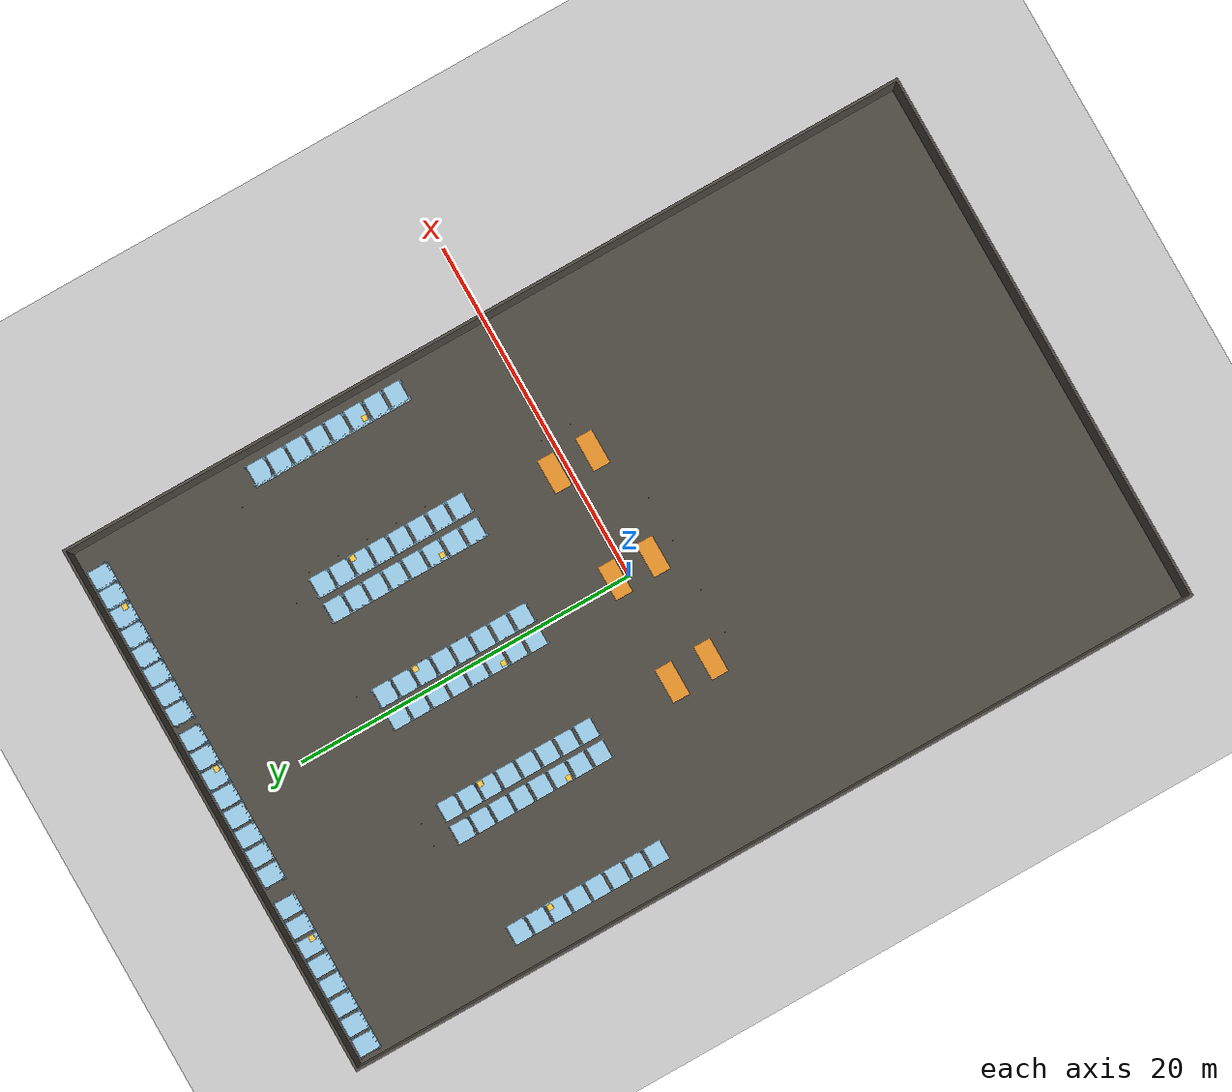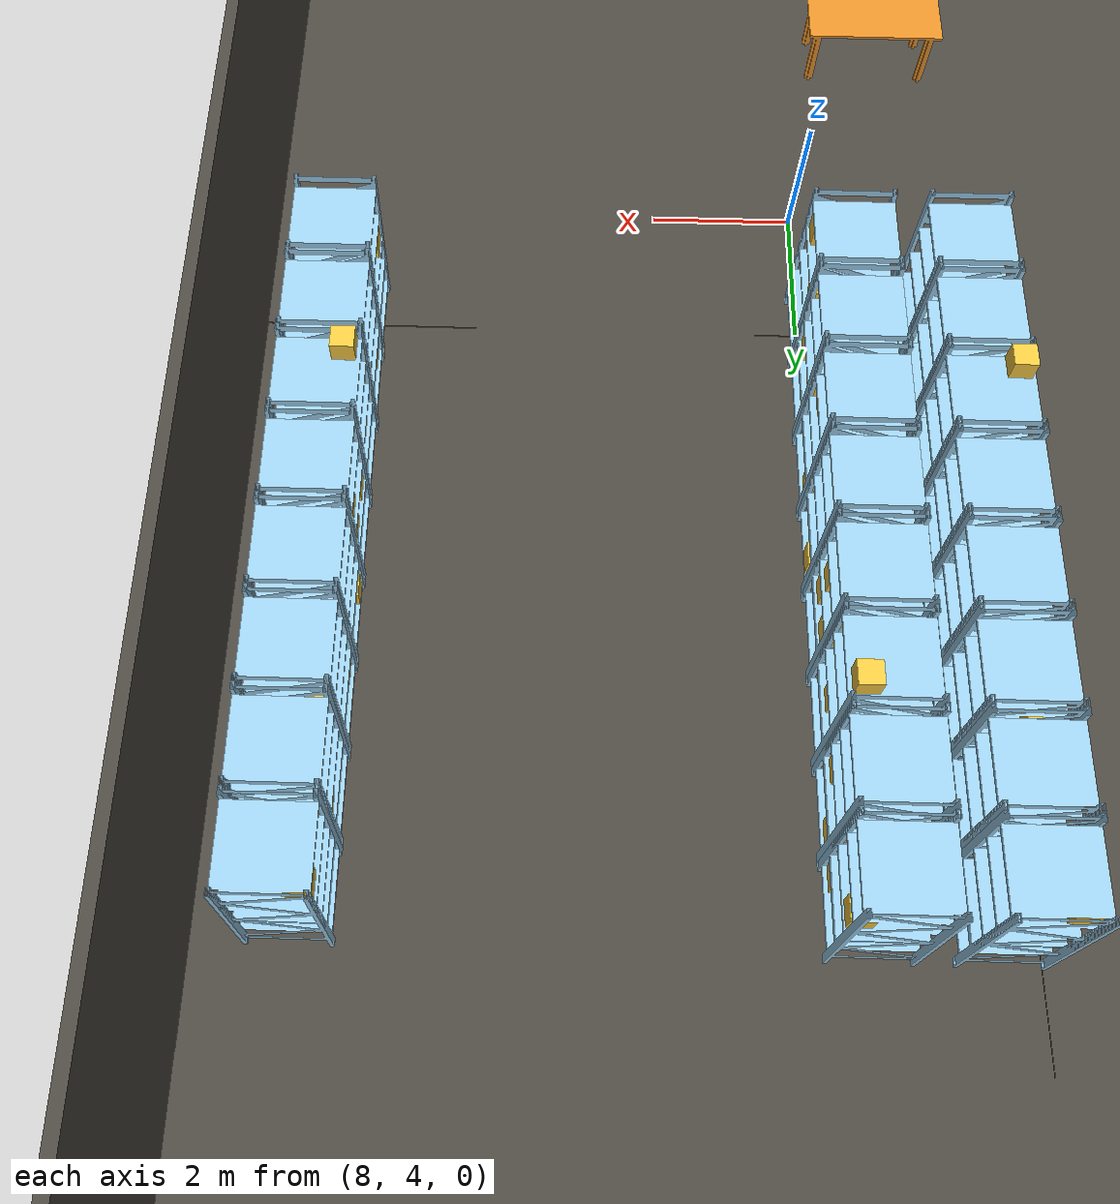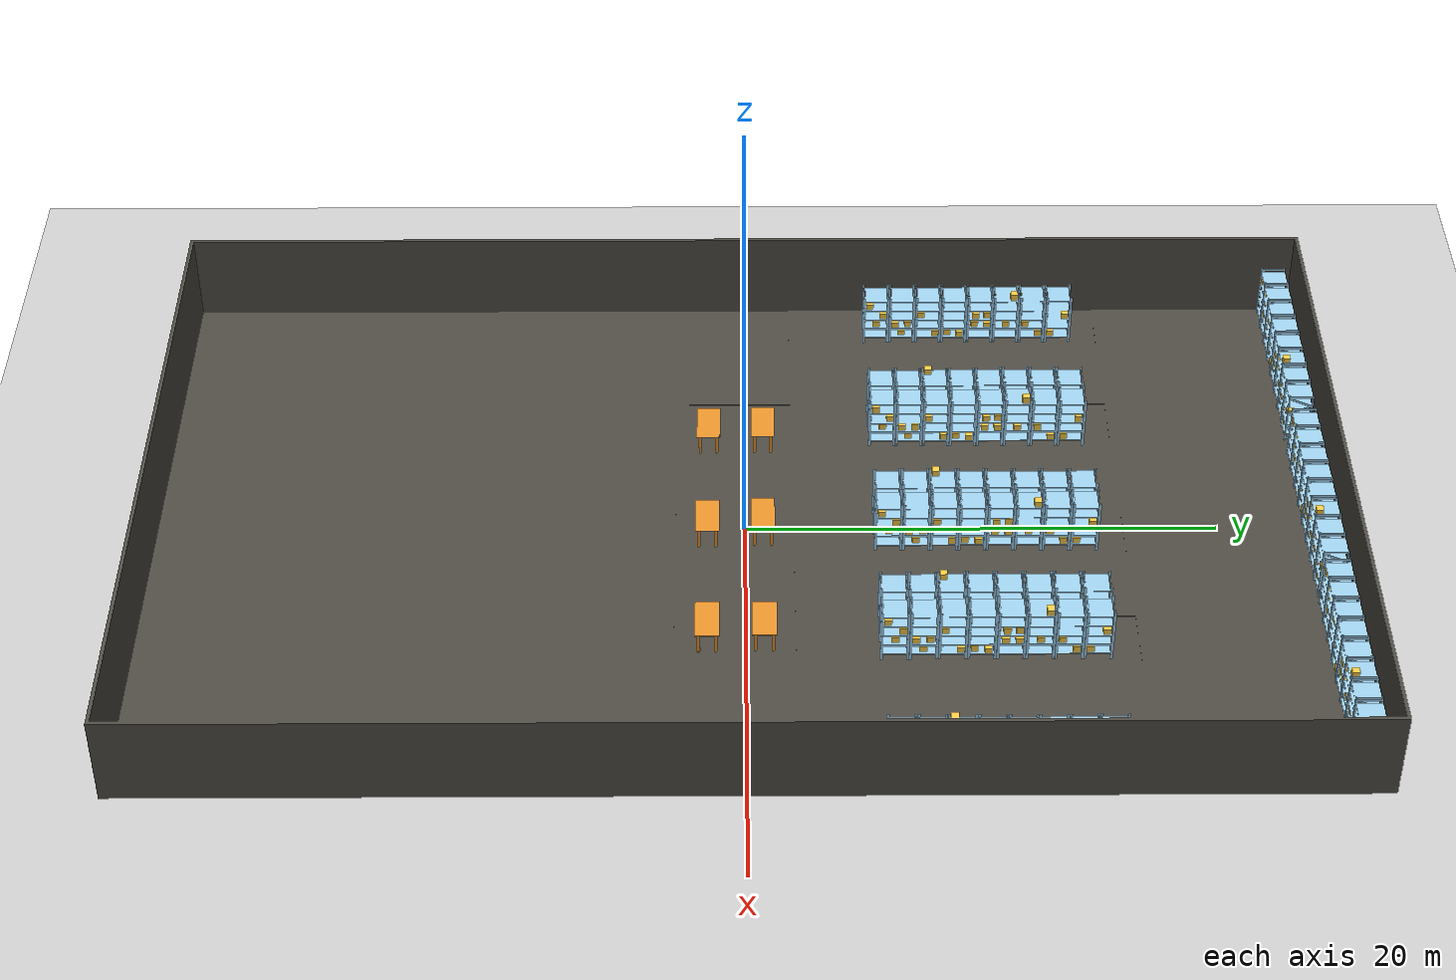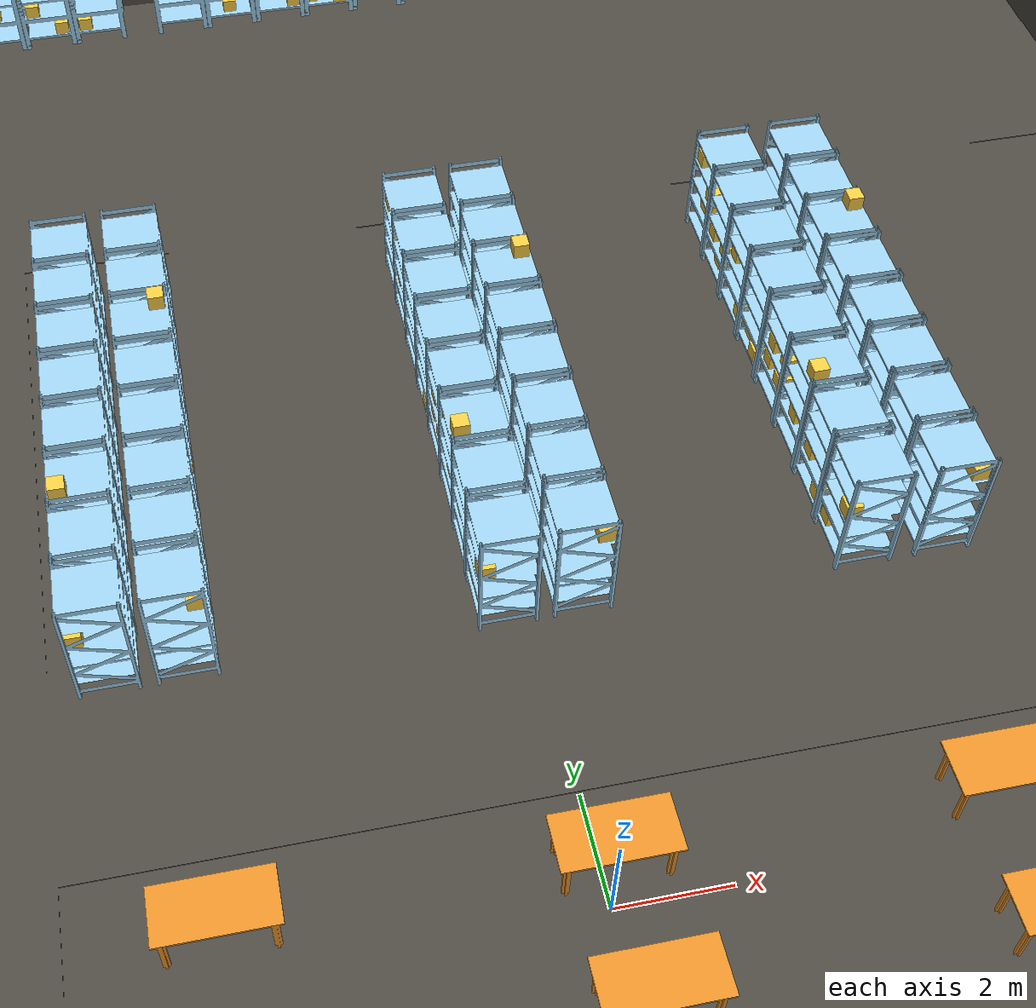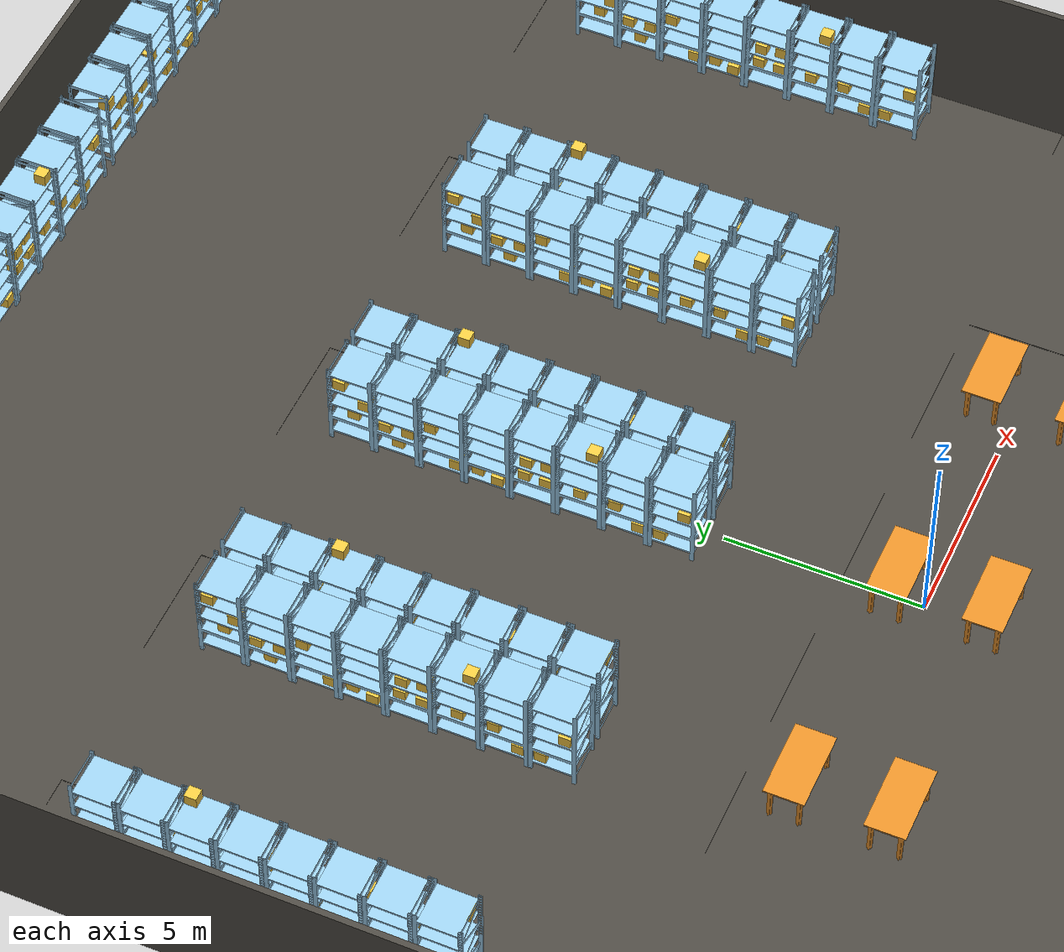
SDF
<sdf version="1.9">
 <world name="industrial_zone">
  <plugin filename="libgz-sim-physics-system.so" name="gz::sim::systems::Physics"/>
  <plugin filename="libgz-sim-user-commands-system.so" name="gz::sim::systems::UserCommands"/>
  <plugin filename="libgz-sim-scene-broadcaster-system.so" name="gz::sim::systems::SceneBroadcaster"/>
  <plugin filename="libgz-sim-sensors-system.so" name="gz::sim::systems::Sensors">
   <render_engine>ogre2</render_engine>
  </plugin>
  <plugin filename="libgz-sim-imu-system.so" name="gz::sim::systems::Imu"/>
  <plugin filename="libgz-sim-navsat-system.so" name="gz::sim::systems::NavSat"/>
  <physics name="default_physics" type="ode">
   <max_step_size>0.02</max_step_size>
   <real_time_factor>1.0</real_time_factor>
   <real_time_update_rate>50</real_time_update_rate>
  </physics>
  <gravity>0 0 -9.8</gravity>
  <magnetic_field>6e-06 2.3e-05 -4.2e-05</magnetic_field>
  <atmosphere type="adiabatic"/>
  <light type="directional" name="sun">
   <pose>0 0 20 -1.3 0 0.5</pose>
   <diffuse>0.8 0.8 0.8 1</diffuse>
   <specular>0.01 0.01 0.01 1</specular>
   <intensity>2</intensity>
   <visualize>false</visualize>
  </light>
  <scene><ambient>1 1 1</ambient><grid>false</grid></scene>
  <model name="ground_plane">
   <static>true</static>
   <link name="link">
    <collision name="collision"><geometry><plane><normal>0 0 1</normal></plane></geometry></collision>
    <visual name="visual">
     <geometry><plane><normal>0 0 1</normal><size>100 100</size></plane></geometry>
     <material>
      <ambient>0.8 0.8 0.8 1</ambient>
      <diffuse>0.8 0.8 0.8 1</diffuse>
      <specular>0.8 0.8 0.8 1</specular>
     </material>
    </visual>
   </link>
  </model>
  <include><uri>model://floor</uri><name>floor</name></include>
  <include><uri>model://shelves</uri><name>shelves_01</name><pose>-5.58 24.5 0 0 0 0</pose></include>
  <include><uri>model://shelves</uri><name>shelves_02</name><pose>4.62 24.50 0 0 0 0</pose></include>
  <include><uri>model://shelves</uri><name>shelves_03</name><pose>14.40 24.50 0 0 0 0</pose></include>
  <include><uri>model://shelves</uri><name>shelves_04</name><pose>-13.73 15.0 0 0 0 1.57</pose></include>
  <include><uri>model://shelves</uri><name>shelves_05</name><pose>-7.08 5.26 0 0 0 -1.57</pose></include>
  <include><uri>model://shelves</uri><name>shelves_06</name><pose>-6.3 15.0 0 0 0 1.57</pose></include>
  <include><uri>model://shelves</uri><name>shelves_07</name><pose>-0.15 5.26 0 0 0 -1.57</pose></include>
  <include><uri>model://shelves</uri><name>shelves_08</name><pose>0.63 15.0 0 0 0 1.57</pose></include>
  <include><uri>model://shelves</uri><name>shelves_09</name><pose>6.38 5.26 0 0 0 -1.57</pose></include>
  <include><uri>model://shelves</uri><name>shelves_10</name><pose>7.32 15.0 0 0 0 1.57</pose></include>
  <include><uri>model://shelves</uri><name>shelves_11</name><pose>14.68 5.26 0 0 0 -1.57</pose></include>
 </world>
</sdf>

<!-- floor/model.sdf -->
<!-- Floor model: ground surface + work tables -->
<!-- Onshape document_id: 413e77afccf5d41747a34ccc / workspace_id: b5425021473a3ff7e609cc44 -->
<sdf version="1.9">
  <model name="floor">
    <static>true</static>
    <link name="floor">
      <!-- Part table -->
      <visual name="table">
        <pose>6.69 0.76 1.0 0 0 0</pose>
        <geometry>
          <mesh><uri>meshes/mesa.stl</uri></mesh>
        </geometry>
        <material>
          <ambient>0.909804 0.572549 0.164706 1</ambient>
          <diffuse>0.909804 0.572549 0.164706 1</diffuse>
        </material>
      </visual>
      <collision name="table_collision">
        <pose>6.69 0.76 1.0 0 0 0</pose>
        <geometry>
          <mesh><uri>meshes/mesa.stl</uri></mesh>
        </geometry>
      </collision>
      <!-- Part floor_surface -->
      <visual name="floor_visual">
        <pose>-15.3716 -24.9021 0 0 0 0</pose>
        <geometry>
          <mesh><uri>meshes/suelo.stl</uri></mesh>
        </geometry>
        <material>
          <ambient>0.301961 0.290196 0.262745 1</ambient>
          <diffuse>0.301961 0.290196 0.262745 1</diffuse>
        </material>
      </visual>
      <collision name="floor_collision">
        <pose>-15.3716 -24.9021 0 0 0 0</pose>
        <geometry>
          <mesh><uri>meshes/suelo.stl</uri></mesh>
        </geometry>
      </collision>
      <!-- Part table_2 -->
      <visual name="table_2">
        <pose>-6 0.8 1.0 0 0 0</pose>
        <geometry>
          <mesh><uri>meshes/mesa.stl</uri></mesh>
        </geometry>
        <material>
          <ambient>0.909804 0.572549 0.164706 1</ambient>
          <diffuse>0.909804 0.572549 0.164706 1</diffuse>
        </material>
      </visual>
      <collision name="table_2_collision">
        <pose>-6 0.8 1.0 0 0 0</pose>
        <geometry>
          <mesh><uri>meshes/mesa.stl</uri></mesh>
        </geometry>
      </collision>
      <!-- Part table_3 -->
      <visual name="table_3">
        <pose>-5.95 -1.575 1.0 0 0 0</pose>
        <geometry>
          <mesh><uri>meshes/mesa.stl</uri></mesh>
        </geometry>
        <material>
          <ambient>0.909804 0.572549 0.164706 1</ambient>
          <diffuse>0.909804 0.572549 0.164706 1</diffuse>
        </material>
      </visual>
      <collision name="table_3_collision">
        <pose>-5.95 -1.575 1.0 0 0 0</pose>
        <geometry>
          <mesh><uri>meshes/mesa.stl</uri></mesh>
        </geometry>
      </collision>
      <!-- Part table_4 -->
      <visual name="table_4">
        <pose>0.2 0.75 1.0 0 0 0</pose>
        <geometry>
          <mesh><uri>meshes/mesa.stl</uri></mesh>
        </geometry>
        <material>
          <ambient>0.909804 0.572549 0.164706 1</ambient>
          <diffuse>0.909804 0.572549 0.164706 1</diffuse>
        </material>
      </visual>
      <collision name="table_4_collision">
        <pose>0.2 0.75 1.0 0 0 0</pose>
        <geometry>
          <mesh><uri>meshes/mesa.stl</uri></mesh>
        </geometry>
      </collision>
      <!-- Part table_5 -->
      <visual name="table_5">
        <pose>0.27 -1.595 1.0 0 0 0</pose>
        <geometry>
          <mesh><uri>meshes/mesa.stl</uri></mesh>
        </geometry>
        <material>
          <ambient>0.909804 0.572549 0.164706 1</ambient>
          <diffuse>0.909804 0.572549 0.164706 1</diffuse>
        </material>
      </visual>
      <collision name="table_5_collision">
        <pose>0.27 -1.595 1.0 0 0 0</pose>
        <geometry>
          <mesh><uri>meshes/mesa.stl</uri></mesh>
        </geometry>
      </collision>
      <!-- Part table_6 -->
      <visual name="table_6">
        <pose>6.73 -1.585 1.0 0 0 0</pose>
        <geometry>
          <mesh><uri>meshes/mesa.stl</uri></mesh>
        </geometry>
        <material>
          <ambient>0.909804 0.572549 0.164706 1</ambient>
          <diffuse>0.909804 0.572549 0.164706 1</diffuse>
        </material>
      </visual>
      <collision name="table_6_collision">
        <pose>6.73 -1.585 1.0 0 0 0</pose>
        <geometry>
          <mesh><uri>meshes/mesa.stl</uri></mesh>
        </geometry>
      </collision>
    </link>
  </model>
</sdf>

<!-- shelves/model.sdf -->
<!-- Shelving unit with boxes -->
<!-- Onshape document_id: 413e77afccf5d41747a34ccc / workspace_id: b5425021473a3ff7e609cc44 -->
<sdf version="1.9">
  <model name="shelves">
    <static>true</static>
    <link name="shelf">
      <!-- Part box -->
      <visual name="box">
        <pose>-2.78049 -0.62 2.38786 0 0 0</pose>
        <geometry><mesh><uri>meshes/caja.stl</uri></mesh></geometry>
        <material>
          <ambient>0.980392 0.796078 0.262745 1</ambient>
          <diffuse>0.980392 0.796078 0.262745 1</diffuse>
        </material>
      </visual>
      <collision name="box_collision">
        <pose>-2.78049 -0.62 2.38786 0 0 0</pose>
        <geometry><mesh><uri>meshes/caja.stl</uri></mesh></geometry>
      </collision>
      <!-- Part shelf_rack -->
      <visual name="shelf_rack_visual">
        <pose>-8.39331 -0.8125 0.0930265 0 0 0</pose>
        <geometry><mesh><uri>meshes/estanteria.stl</uri></mesh></geometry>
        <material>
          <ambient>0.615686 0.811765 0.92549 1</ambient>
          <diffuse>0.615686 0.811765 0.92549 1</diffuse>
        </material>
      </visual>
      <collision name="shelf_rack_collision">
        <pose>-8.39331 -0.8125 0.0930265 0 0 0</pose>
        <geometry><mesh><uri>meshes/estanteria.stl</uri></mesh></geometry>
      </collision>
      <!-- Part shelf_rack_2 -->
      <visual name="shelf_rack_2">
        <pose>-3.67331 -0.8125 0.0930265 0 0 0</pose>
        <geometry><mesh><uri>meshes/estanteria.stl</uri></mesh></geometry>
        <material>
          <ambient>0.615686 0.811765 0.92549 1</ambient>
          <diffuse>0.615686 0.811765 0.92549 1</diffuse>
        </material>
      </visual>
      <collision name="shelf_rack_2_collision">
        <pose>-3.67331 -0.8125 0.0930265 0 0 0</pose>
        <geometry><mesh><uri>meshes/estanteria.stl</uri></mesh></geometry>
      </collision>
      <!-- Part box_2 -->
      <visual name="box_2">
        <pose>-1.6072 -0.6325 0.382277 0 0 0</pose>
        <geometry><mesh><uri>meshes/caja.stl</uri></mesh></geometry>
        <material>
          <ambient>0.980392 0.796078 0.262745 1</ambient>
          <diffuse>0.980392 0.796078 0.262745 1</diffuse>
        </material>
      </visual>
      <collision name="box_2_collision">
        <pose>-1.6072 -0.6325 0.382277 0 0 0</pose>
        <geometry><mesh><uri>meshes/caja.stl</uri></mesh></geometry>
      </collision>
      <!-- Part box_3 -->
      <visual name="box_3">
        <pose>-3.09159 -0.621707 0.880993 0 0 0</pose>
        <geometry><mesh><uri>meshes/caja.stl</uri></mesh></geometry>
        <material>
          <ambient>0.980392 0.796078 0.262745 1</ambient>
          <diffuse>0.980392 0.796078 0.262745 1</diffuse>
        </material>
      </visual>
      <collision name="box_3_collision">
        <pose>-3.09159 -0.621707 0.880993 0 0 0</pose>
        <geometry><mesh><uri>meshes/caja.stl</uri></mesh></geometry>
      </collision>
      <!-- Part box_4 -->
      <visual name="box_4">
        <pose>-5.18688 -0.6725 0.377986 0 0 0</pose>
        <geometry><mesh><uri>meshes/caja.stl</uri></mesh></geometry>
        <material>
          <ambient>0.980392 0.796078 0.262745 1</ambient>
          <diffuse>0.980392 0.796078 0.262745 1</diffuse>
        </material>
      </visual>
      <collision name="box_4_collision">
        <pose>-5.18688 -0.6725 0.377986 0 0 0</pose>
        <geometry><mesh><uri>meshes/caja.stl</uri></mesh></geometry>
      </collision>
      <!-- Part box_5 -->
      <visual name="box_5">
        <pose>-2.20641 -0.6175 0.885253 0 0 0</pose>
        <geometry><mesh><uri>meshes/caja.stl</uri></mesh></geometry>
        <material>
          <ambient>0.980392 0.796078 0.262745 1</ambient>
          <diffuse>0.980392 0.796078 0.262745 1</diffuse>
        </material>
      </visual>
      <collision name="box_5_collision">
        <pose>-2.20641 -0.6175 0.885253 0 0 0</pose>
        <geometry><mesh><uri>meshes/caja.stl</uri></mesh></geometry>
      </collision>
      <!-- Part shelf_rack_3 -->
      <visual name="shelf_rack_3">
        <pose>-2.49331 -0.8125 0.0930265 0 0 0</pose>
        <geometry><mesh><uri>meshes/estanteria.stl</uri></mesh></geometry>
        <material>
          <ambient>0.615686 0.811765 0.92549 1</ambient>
          <diffuse>0.615686 0.811765 0.92549 1</diffuse>
        </material>
      </visual>
      <collision name="shelf_rack_3_collision">
        <pose>-2.49331 -0.8125 0.0930265 0 0 0</pose>
        <geometry><mesh><uri>meshes/estanteria.stl</uri></mesh></geometry>
      </collision>
      <!-- Part shelf_rack_4 -->
      <visual name="shelf_rack_4">
        <pose>-4.85331 -0.8125 0.0930265 0 0 0</pose>
        <geometry><mesh><uri>meshes/estanteria.stl</uri></mesh></geometry>
        <material>
          <ambient>0.615686 0.811765 0.92549 1</ambient>
          <diffuse>0.615686 0.811765 0.92549 1</diffuse>
        </material>
      </visual>
      <collision name="shelf_rack_4_collision">
        <pose>-4.85331 -0.8125 0.0930265 0 0 0</pose>
        <geometry><mesh><uri>meshes/estanteria.stl</uri></mesh></geometry>
      </collision>
      <!-- Part shelf_rack_5 -->
      <visual name="shelf_rack_5">
        <pose>-6.03331 -0.8125 0.0930265 0 0 0</pose>
        <geometry><mesh><uri>meshes/estanteria.stl</uri></mesh></geometry>
        <material>
          <ambient>0.615686 0.811765 0.92549 1</ambient>
          <diffuse>0.615686 0.811765 0.92549 1</diffuse>
        </material>
      </visual>
      <collision name="shelf_rack_5_collision">
        <pose>-6.03331 -0.8125 0.0930265 0 0 0</pose>
        <geometry><mesh><uri>meshes/estanteria.stl</uri></mesh></geometry>
      </collision>
      <!-- Part shelf_rack_6 -->
      <visual name="shelf_rack_6">
        <pose>-7.21331 -0.8125 0.0930265 0 0 0</pose>
        <geometry><mesh><uri>meshes/estanteria.stl</uri></mesh></geometry>
        <material>
          <ambient>0.615686 0.811765 0.92549 1</ambient>
          <diffuse>0.615686 0.811765 0.92549 1</diffuse>
        </material>
      </visual>
      <collision name="shelf_rack_6_collision">
        <pose>-7.21331 -0.8125 0.0930265 0 0 0</pose>
        <geometry><mesh><uri>meshes/estanteria.stl</uri></mesh></geometry>
      </collision>
      <!-- Part box_6 -->
      <visual name="box_6">
        <pose>-1.05503 -0.6175 0.38335 0 0 0</pose>
        <geometry><mesh><uri>meshes/caja.stl</uri></mesh></geometry>
        <material>
          <ambient>0.980392 0.796078 0.262745 1</ambient>
          <diffuse>0.980392 0.796078 0.262745 1</diffuse>
        </material>
      </visual>
      <collision name="box_6_collision">
        <pose>-1.05503 -0.6175 0.38335 0 0 0</pose>
        <geometry><mesh><uri>meshes/caja.stl</uri></mesh></geometry>
      </collision>
      <!-- Part box_7 -->
      <visual name="box_7">
        <pose>-7.82352 -0.5525 0.368958 0 0 0</pose>
        <geometry><mesh><uri>meshes/caja.stl</uri></mesh></geometry>
        <material>
          <ambient>0.980392 0.796078 0.262745 1</ambient>
          <diffuse>0.980392 0.796078 0.262745 1</diffuse>
        </material>
      </visual>
      <collision name="box_7_collision">
        <pose>-7.82352 -0.5525 0.368958 0 0 0</pose>
        <geometry><mesh><uri>meshes/caja.stl</uri></mesh></geometry>
      </collision>
      <!-- Part box_8 -->
      <visual name="box_8">
        <pose>-3.95203 -0.57 1.38433 0 0 0</pose>
        <geometry><mesh><uri>meshes/caja.stl</uri></mesh></geometry>
        <material>
          <ambient>0.980392 0.796078 0.262745 1</ambient>
          <diffuse>0.980392 0.796078 0.262745 1</diffuse>
        </material>
      </visual>
      <collision name="box_8_collision">
        <pose>-3.95203 -0.57 1.38433 0 0 0</pose>
        <geometry><mesh><uri>meshes/caja.stl</uri></mesh></geometry>
      </collision>
      <!-- Part box_9 -->
      <visual name="box_9">
        <pose>-0.447349 -0.655 1.37427 0 0 0</pose>
        <geometry><mesh><uri>meshes/caja.stl</uri></mesh></geometry>
        <material>
          <ambient>0.980392 0.796078 0.262745 1</ambient>
          <diffuse>0.980392 0.796078 0.262745 1</diffuse>
        </material>
      </visual>
      <collision name="box_9_collision">
        <pose>-0.447349 -0.655 1.37427 0 0 0</pose>
        <geometry><mesh><uri>meshes/caja.stl</uri></mesh></geometry>
      </collision>
      <!-- Part shelf_rack_7 -->
      <visual name="shelf_rack_7">
        <pose>-9.57331 -0.8125 0.0930265 0 0 0</pose>
        <geometry><mesh><uri>meshes/estanteria.stl</uri></mesh></geometry>
        <material>
          <ambient>0.615686 0.811765 0.92549 1</ambient>
          <diffuse>0.615686 0.811765 0.92549 1</diffuse>
        </material>
      </visual>
      <collision name="shelf_rack_7_collision">
        <pose>-9.57331 -0.8125 0.0930265 0 0 0</pose>
        <geometry><mesh><uri>meshes/estanteria.stl</uri></mesh></geometry>
      </collision>
      <!-- Part box_10 -->
      <visual name="box_10">
        <pose>-8.66574 -0.6025 1.37491 0 0 0</pose>
        <geometry><mesh><uri>meshes/caja.stl</uri></mesh></geometry>
        <material>
          <ambient>0.980392 0.796078 0.262745 1</ambient>
          <diffuse>0.980392 0.796078 0.262745 1</diffuse>
        </material>
      </visual>
      <collision name="box_10_collision">
        <pose>-8.66574 -0.6025 1.37491 0 0 0</pose>
        <geometry><mesh><uri>meshes/caja.stl</uri></mesh></geometry>
      </collision>
      <!-- Part box_11 -->
      <visual name="box_11">
        <pose>-8.96428 -0.565 0.881478 0 0 0</pose>
        <geometry><mesh><uri>meshes/caja.stl</uri></mesh></geometry>
        <material>
          <ambient>0.980392 0.796078 0.262745 1</ambient>
          <diffuse>0.980392 0.796078 0.262745 1</diffuse>
        </material>
      </visual>
      <collision name="box_11_collision">
        <pose>-8.96428 -0.565 0.881478 0 0 0</pose>
        <geometry><mesh><uri>meshes/caja.stl</uri></mesh></geometry>
      </collision>
      <!-- Part box_12 -->
      <visual name="box_12">
        <pose>-5.74187 -0.55 0.38081 0 0 0</pose>
        <geometry><mesh><uri>meshes/caja.stl</uri></mesh></geometry>
        <material>
          <ambient>0.980392 0.796078 0.262745 1</ambient>
          <diffuse>0.980392 0.796078 0.262745 1</diffuse>
        </material>
      </visual>
      <collision name="box_12_collision">
        <pose>-5.74187 -0.55 0.38081 0 0 0</pose>
        <geometry><mesh><uri>meshes/caja.stl</uri></mesh></geometry>
      </collision>
      <!-- Part box_13 -->
      <visual name="box_13">
        <pose>-6.29403 -0.625 0.386296 0 0 0</pose>
        <geometry><mesh><uri>meshes/caja.stl</uri></mesh></geometry>
        <material>
          <ambient>0.980392 0.796078 0.262745 1</ambient>
          <diffuse>0.980392 0.796078 0.262745 1</diffuse>
        </material>
      </visual>
      <collision name="box_13_collision">
        <pose>-6.29403 -0.625 0.386296 0 0 0</pose>
        <geometry><mesh><uri>meshes/caja.stl</uri></mesh></geometry>
      </collision>
      <!-- Part box_14 -->
      <visual name="box_14">
        <pose>-9.29 -0.64 1.89 0 0 0</pose>
        <geometry><mesh><uri>meshes/caja.stl</uri></mesh></geometry>
        <material>
          <ambient>0.980392 0.796078 0.262745 1</ambient>
          <diffuse>0.980392 0.796078 0.262745 1</diffuse>
        </material>
      </visual>
      <collision name="box_14_collision">
        <pose>-9.29 -0.64 1.89 0 0 0</pose>
        <geometry><mesh><uri>meshes/caja.stl</uri></mesh></geometry>
      </collision>
      <!-- Part box_15 -->
      <visual name="box_15">
        <pose>-6.95548 -0.5875 1.37829 0 0 0</pose>
        <geometry><mesh><uri>meshes/caja.stl</uri></mesh></geometry>
        <material>
          <ambient>0.980392 0.796078 0.262745 1</ambient>
          <diffuse>0.980392 0.796078 0.262745 1</diffuse>
        </material>
      </visual>
      <collision name="box_15_collision">
        <pose>-6.95548 -0.5875 1.37829 0 0 0</pose>
        <geometry><mesh><uri>meshes/caja.stl</uri></mesh></geometry>
      </collision>
      <!-- Part box_16 -->
      <visual name="box_16">
        <pose>-4.46562 -0.6325 1.38183 0 0 0</pose>
        <geometry><mesh><uri>meshes/caja.stl</uri></mesh></geometry>
        <material>
          <ambient>0.980392 0.796078 0.262745 1</ambient>
          <diffuse>0.980392 0.796078 0.262745 1</diffuse>
        </material>
      </visual>
      <collision name="box_16_collision">
        <pose>-4.46562 -0.6325 1.38183 0 0 0</pose>
        <geometry><mesh><uri>meshes/caja.stl</uri></mesh></geometry>
      </collision>
      <!-- Part box_17 -->
      <visual name="box_17">
        <pose>-7.54515 -0.59 0.886883 0 0 0</pose>
        <geometry><mesh><uri>meshes/caja.stl</uri></mesh></geometry>
        <material>
          <ambient>0.980392 0.796078 0.262745 1</ambient>
          <diffuse>0.980392 0.796078 0.262745 1</diffuse>
        </material>
      </visual>
      <collision name="box_17_collision">
        <pose>-7.54515 -0.59 0.886883 0 0 0</pose>
        <geometry><mesh><uri>meshes/caja.stl</uri></mesh></geometry>
      </collision>
      <!-- Part box_18 -->
      <visual name="box_18">
        <pose>-8.12702 -0.6275 0.878654 0 0 0</pose>
        <geometry><mesh><uri>meshes/caja.stl</uri></mesh></geometry>
        <material>
          <ambient>0.980392 0.796078 0.262745 1</ambient>
          <diffuse>0.980392 0.796078 0.262745 1</diffuse>
        </material>
      </visual>
      <collision name="box_18_collision">
        <pose>-8.12702 -0.6275 0.878654 0 0 0</pose>
        <geometry><mesh><uri>meshes/caja.stl</uri></mesh></geometry>
      </collision>
      <!-- Part box_19 -->
      <visual name="box_19">
        <pose>-3.9531 -0.645 0.87249 0 0 0</pose>
        <geometry><mesh><uri>meshes/caja.stl</uri></mesh></geometry>
        <material>
          <ambient>0.980392 0.796078 0.262745 1</ambient>
          <diffuse>0.980392 0.796078 0.262745 1</diffuse>
        </material>
      </visual>
      <collision name="box_19_collision">
        <pose>-3.9531 -0.645 0.87249 0 0 0</pose>
        <geometry><mesh><uri>meshes/caja.stl</uri></mesh></geometry>
      </collision>
      <!-- Part shelf_rack_8 -->
      <visual name="shelf_rack_8">
        <pose>-1.31331 -0.8125 0.0930265 0 0 0</pose>
        <geometry><mesh><uri>meshes/estanteria.stl</uri></mesh></geometry>
        <material>
          <ambient>0.615686 0.811765 0.92549 1</ambient>
          <diffuse>0.615686 0.811765 0.92549 1</diffuse>
        </material>
      </visual>
      <collision name="shelf_rack_8_collision">
        <pose>-1.31331 -0.8125 0.0930265 0 0 0</pose>
        <geometry><mesh><uri>meshes/estanteria.stl</uri></mesh></geometry>
      </collision>
      <!-- Part box_20 -->
      <visual name="box_20">
        <pose>-4.51374 -0.6375 0.883108 0 0 0</pose>
        <geometry><mesh><uri>meshes/caja.stl</uri></mesh></geometry>
        <material>
          <ambient>0.980392 0.796078 0.262745 1</ambient>
          <diffuse>0.980392 0.796078 0.262745 1</diffuse>
        </material>
      </visual>
      <collision name="box_20_collision">
        <pose>-4.51374 -0.6375 0.883108 0 0 0</pose>
        <geometry><mesh><uri>meshes/caja.stl</uri></mesh></geometry>
      </collision>
    </link>
  </model>
</sdf>
